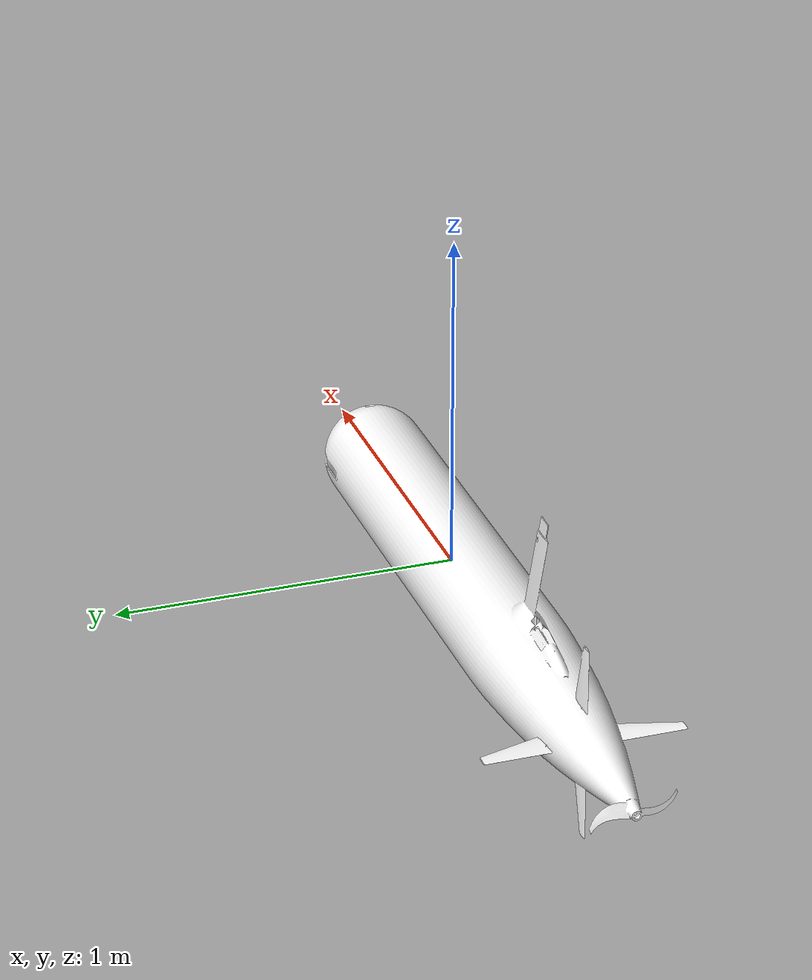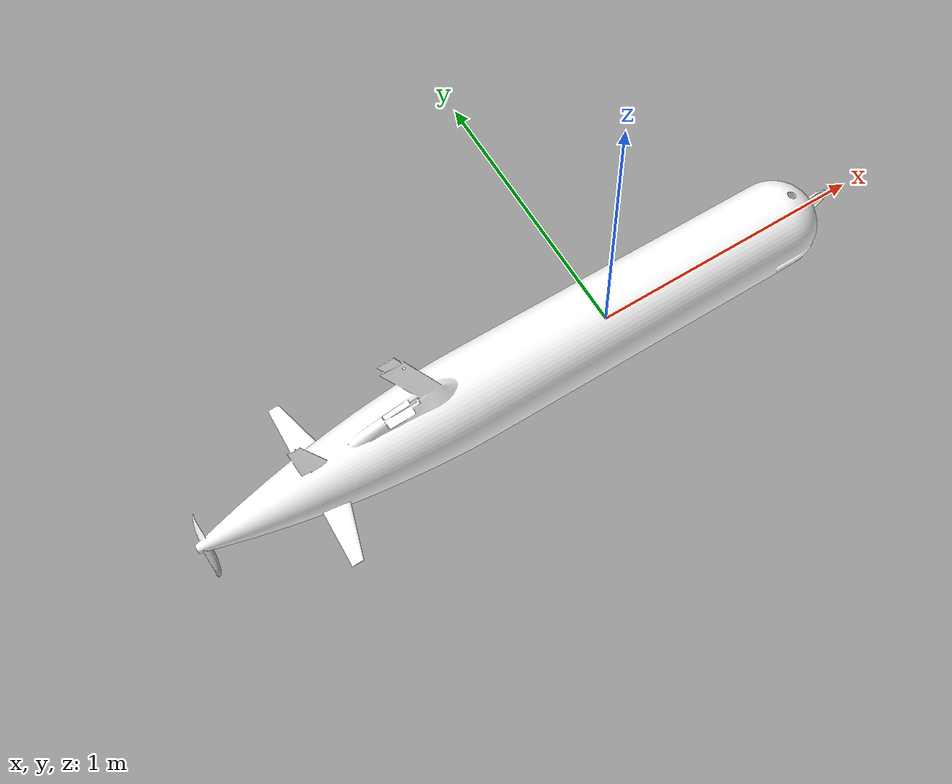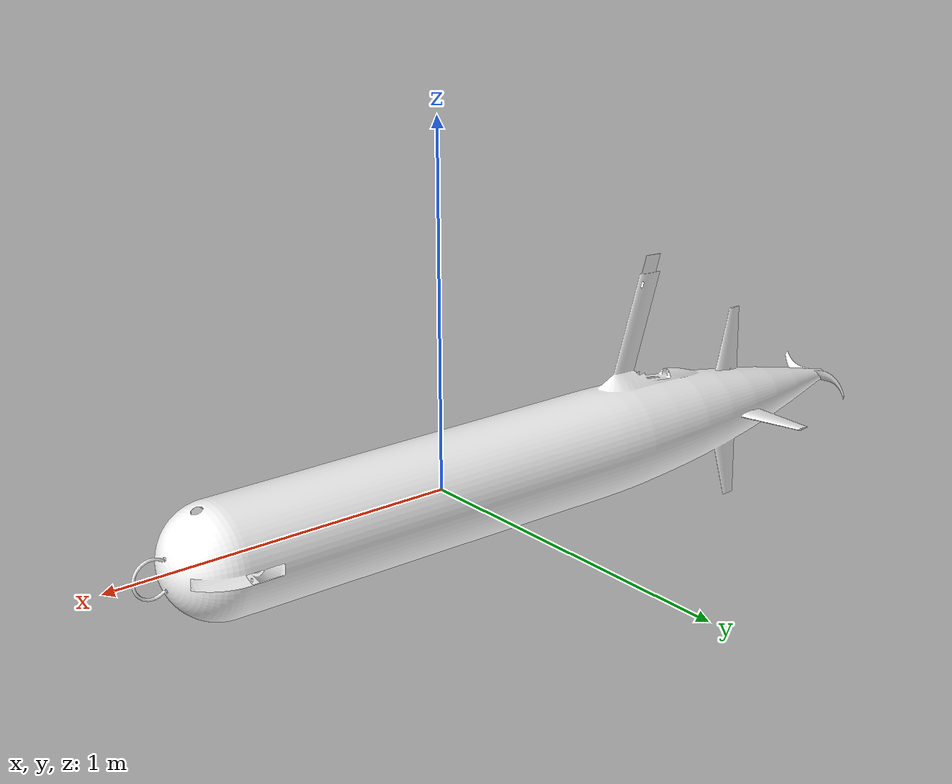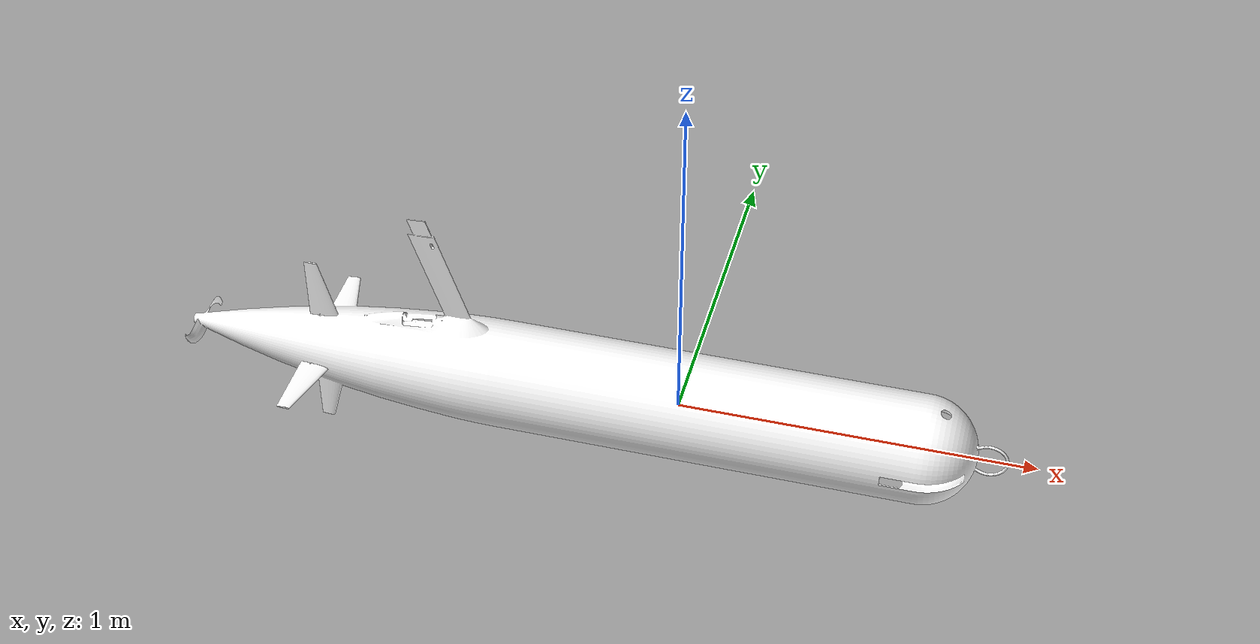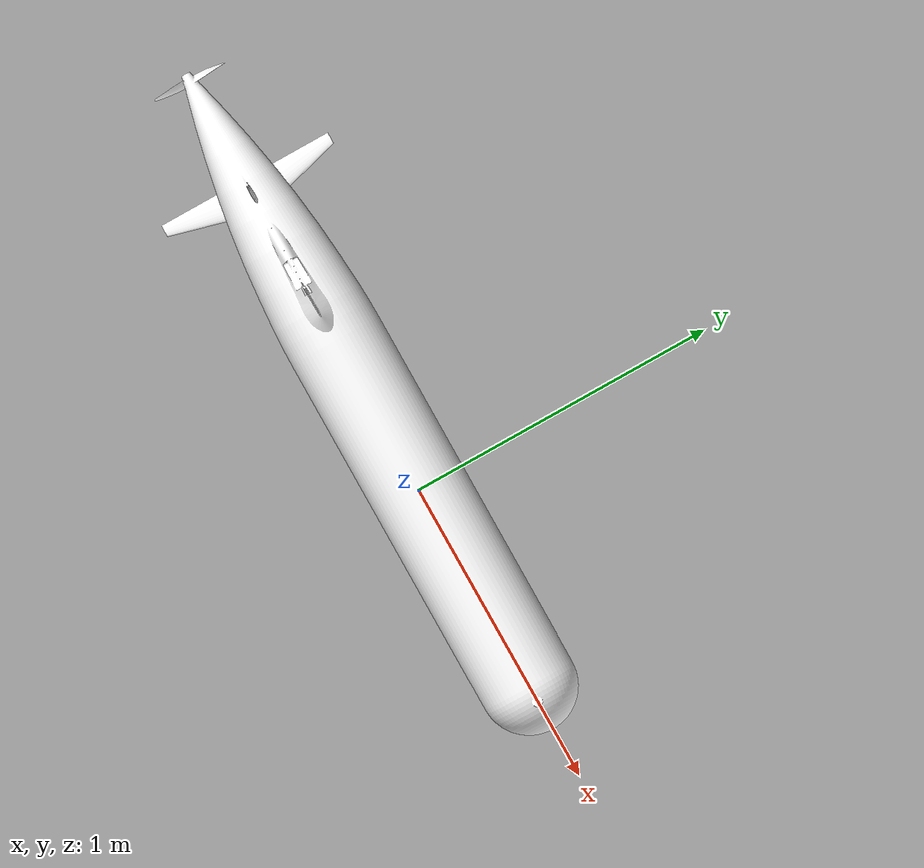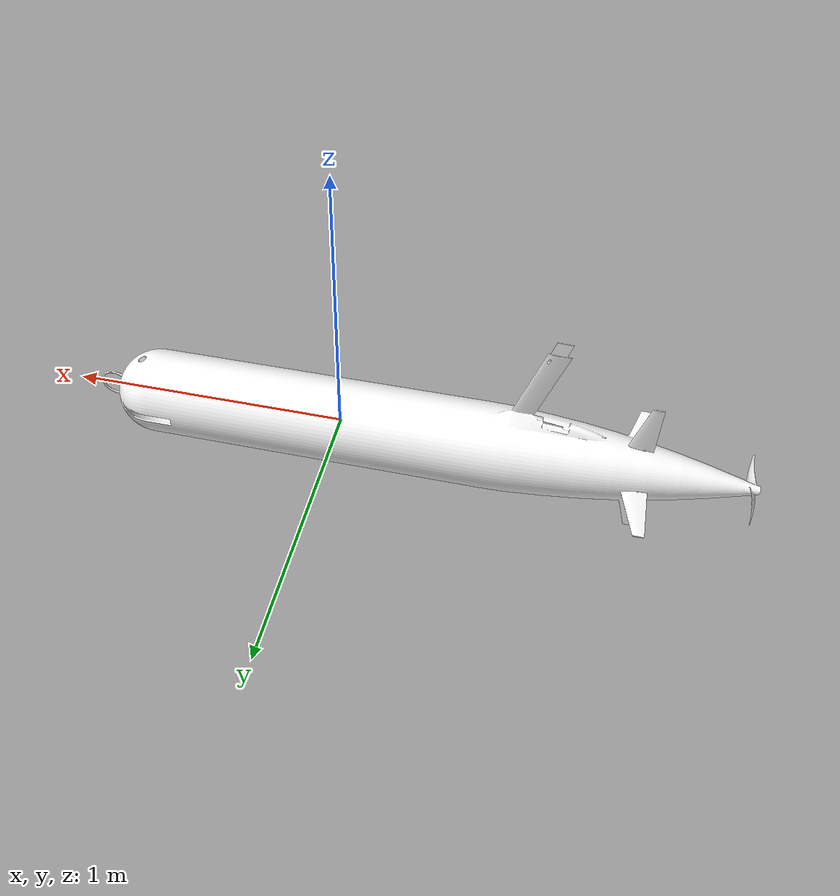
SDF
<?xml version="1.0" ?>

<sdf version="1.9">
  <world name="buoyant_lrauv">
    <scene>
      <ambient>0.0 1.0 1.0</ambient>
      <background>0.0 0.7 0.8</background>
    </scene>

    <physics name="1ms" type="ode">
      <max_step_size>0.001</max_step_size>
      <real_time_factor>1.0</real_time_factor>
    </physics>
    <plugin
      filename="gz-sim-physics-system"
      name="gz::sim::systems::Physics">
    </plugin>
    <plugin
      filename="gz-sim-user-commands-system"
      name="gz::sim::systems::UserCommands">
    </plugin>
    <plugin
      filename="gz-sim-scene-broadcaster-system"
      name="gz::sim::systems::SceneBroadcaster">
    </plugin>
    <plugin
      filename="gz-sim-contact-system"
      name="gz::sim::systems::Contact">
    </plugin>

    <plugin
      filename="gz-sim-buoyancy-system"
      name="gz::sim::systems::Buoyancy">
      <uniform_fluid_density>1000</uniform_fluid_density>
    </plugin>

    <plugin
      filename="gz-sim-particle-emitter-system"
      name="gz::sim::systems::ParticleEmitter">
    </plugin>

    <light type="directional" name="sun">
      <cast_shadows>true</cast_shadows>
      <pose>0 0 10 0 0 0</pose>
      <diffuse>1 1 1 1</diffuse>
      <specular>0.5 0.5 0.5 1</specular>
      <attenuation>
        <range>1000</range>
        <constant>0.9</constant>
        <linear>0.01</linear>
        <quadratic>0.001</quadratic>
      </attenuation>
      <direction>-0.5 0.1 -0.9</direction>
    </light>

    <gui>
      <plugin filename="MinimalScene" name="3D View">
        <gz-gui>
          <title>3D View</title>
          <property type="bool" key="showTitleBar">false</property>
          <property type="string" key="state">docked</property>
        </gz-gui>

        <engine>ogre2</engine>
        <scene>scene</scene>
        <ambient_light>0.4 0.4 0.4</ambient_light>
        <background_color>0.8 0.8 0.8</background_color>
        <camera_pose>5 -1.5 3 0 0.37 2.8</camera_pose>
      </plugin>

      <!-- Plugins that add functionality to the scene -->
      <plugin filename="EntityContextMenuPlugin" name="Entity context menu">
        <gz-gui>
          <property key="state" type="string">floating</property>
          <property key="width" type="double">5</property>
          <property key="height" type="double">5</property>
          <property key="showTitleBar" type="bool">false</property>
        </gz-gui>
      </plugin>
      <plugin filename="GzSceneManager" name="Scene Manager">
        <gz-gui>
          <property key="resizable" type="bool">false</property>
          <property key="width" type="double">5</property>
          <property key="height" type="double">5</property>
          <property key="state" type="string">floating</property>
          <property key="showTitleBar" type="bool">false</property>
        </gz-gui>
      </plugin>
      <plugin filename="InteractiveViewControl" name="Interactive view control">
        <gz-gui>
          <property key="resizable" type="bool">false</property>
          <property key="width" type="double">5</property>
          <property key="height" type="double">5</property>
          <property key="state" type="string">floating</property>
          <property key="showTitleBar" type="bool">false</property>
        </gz-gui>
      </plugin>
      <plugin filename="CameraTracking" name="Camera Tracking">
        <gz-gui>
          <property key="resizable" type="bool">false</property>
          <property key="width" type="double">5</property>
          <property key="height" type="double">5</property>
          <property key="state" type="string">floating</property>
          <property key="showTitleBar" type="bool">false</property>
        </gz-gui>
      </plugin>
      <!-- World control -->
      <plugin filename="WorldControl" name="World control">
        <gz-gui>
          <title>World control</title>
          <property type="bool" key="showTitleBar">false</property>
          <property type="bool" key="resizable">false</property>
          <property type="double" key="height">72</property>
          <property type="double" key="z">1</property>

          <property type="string" key="state">floating</property>
          <anchors target="3D View">
            <line own="left" target="left"/>
            <line own="bottom" target="bottom"/>
          </anchors>
        </gz-gui>

        <play_pause>true</play_pause>
        <step>true</step>
        <start_paused>true</start_paused>
        <use_event>true</use_event>

      </plugin>

      <!-- World statistics -->
      <plugin filename="WorldStats" name="World stats">
        <gz-gui>
          <title>World stats</title>
          <property type="bool" key="showTitleBar">false</property>
          <property type="bool" key="resizable">false</property>
          <property type="double" key="height">110</property>
          <property type="double" key="width">290</property>
          <property type="double" key="z">1</property>

          <property type="string" key="state">floating</property>
          <anchors target="3D View">
            <line own="right" target="right"/>
            <line own="bottom" target="bottom"/>
          </anchors>
        </gz-gui>

        <sim_time>true</sim_time>
        <real_time>true</real_time>
        <real_time_factor>true</real_time_factor>
        <iterations>true</iterations>
      </plugin>

      <plugin filename="MarkerManager" name="Marker manager">
        <gz-gui>
          <property key="resizable" type="bool">false</property>
          <property key="width" type="double">5</property>
          <property key="height" type="double">5</property>
          <property key="state" type="string">floating</property>
          <property key="showTitleBar" type="bool">false</property>
        </gz-gui>
      </plugin>

      <plugin filename="SelectEntities" name="Select Entities">
        <gz-gui>
          <anchors target="Select entities">
            <line own="right" target="right"/>
            <line own="top" target="top"/>
          </anchors>
          <property key="resizable" type="bool">false</property>
          <property key="width" type="double">5</property>
          <property key="height" type="double">5</property>
          <property key="state" type="string">floating</property>
          <property key="showTitleBar" type="bool">false</property>
        </gz-gui>
      </plugin>

      <plugin filename="VisualizationCapabilities" name="Visualization Capabilities">
        <gz-gui>
          <anchors target="Select entities">
            <line own="right" target="right"/>
            <line own="top" target="top"/>
          </anchors>
          <property key="resizable" type="bool">false</property>
          <property key="width" type="double">5</property>
          <property key="height" type="double">5</property>
          <property key="state" type="string">floating</property>
          <property key="showTitleBar" type="bool">false</property>
        </gz-gui>
      </plugin>

      <!-- Entity tree -->
      <plugin filename="EntityTree" name="Entity tree">
      </plugin>

    </gui>

    <model name="my_lrauv">
      <include merge="true" >
        <!-- align with NED (face North) -->
        <pose degrees="true">0 0 0 0 0 -180</pose>
        <uri>my_lrauv</uri>

        <plugin
          filename="gz-sim-odometry-publisher-system"
          name="gz::sim::systems::OdometryPublisher">
        </plugin>

        <!-- Joint controllers -->
        <plugin
          filename="gz-sim-joint-position-controller-system"
          name="gz::sim::systems::JointPositionController">
          <joint_name>horizontal_fins_joint</joint_name>
          <p_gain>0.1</p_gain>
        </plugin>

        <plugin
          filename="gz-sim-joint-position-controller-system"
          name="gz::sim::systems::JointPositionController">
          <joint_name>vertical_fins_joint</joint_name>
          <p_gain>0.1</p_gain>
        </plugin>

        <!-- Uncomment to add a thruster -->

        <!-- Lift and drag -->

        <!-- Vertical fin -->
        <plugin
          filename="gz-sim-lift-drag-system"
          name="gz::sim::systems::LiftDrag">
          <air_density>1000</air_density>
          <cla>4.13</cla>
          <cla_stall>-1.1</cla_stall>
          <cda>0.2</cda>
          <cda_stall>0.03</cda_stall>
          <alpha_stall>0.17</alpha_stall>
          <a0>0</a0>
          <area>0.0244</area>
          <upward>0 1 0</upward>
          <forward>-1 0 0</forward>
          <link_name>vertical_fins</link_name>
          <cp>0 0 0</cp>
        </plugin>

        <!-- Horizontal fin -->
        <plugin
          filename="gz-sim-lift-drag-system"
          name="gz::sim::systems::LiftDrag">
          <air_density>1000</air_density>
          <cla>4.13</cla>
          <cla_stall>-1.1</cla_stall>
          <cda>0.2</cda>
          <cda_stall>0.03</cda_stall>
          <alpha_stall>0.17</alpha_stall>
          <a0>0</a0>
          <area>0.0244</area>
          <upward>0 0 1</upward>
          <forward>1 0 0</forward>
          <link_name>horizontal_fins</link_name>
          <cp>0 0 0</cp>
        </plugin>

        <!-- Uncomment to add hydrodynamics -->
      </include>
    </model>

  </world>
</sdf>

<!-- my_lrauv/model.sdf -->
<sdf version="1.6">
  <model name="my_lrauv">
    <!-- Body -->
    <link name="base_link">
      <inertial>
        <mass>147.8671</mass>
        <inertia>
          <ixx>3.000000</ixx>
          <ixy>0</ixy>
          <ixz>0</ixz>
          <iyy>41.980233</iyy>
          <iyz>0</iyz>
          <izz>41.980233</izz>
        </inertia>
      </inertial>
      <!-- Uncomment this block to enable neutral buoyancy. -->
      <collision name="main_body_buoyancy">
        <geometry>
          <box>
            <size>2 0.3 0.2464451666666667</size>
          </box>
        </geometry>
      </collision>
      <visual name="visual">
        <geometry>
          <mesh>
            <uri>meshes/tethys.dae</uri>
            <submesh>
              <name>Body</name>
                <center>false</center>
            </submesh>
          </mesh>
        </geometry>
        <material>
          <diffuse>1.0 1.0 1.0</diffuse>
          <specular>1.0 1.0 1.0</specular>
          <pbr>
            <metal>
              <albedo_map>materials/textures/Tethys_Albedo.png</albedo_map>
              <normal_map>materials/textures/Tethys_Normal.png</normal_map>
              <metalness_map>materials/textures/Tethys_Metalness.png</metalness_map>
              <roughness_map>materials/textures/Tethys_Roughness.png</roughness_map>
            </metal>
          </pbr>
        </material>
      </visual>
    </link>
    <!-- Horizontal fins -->
    <link name="horizontal_fins">
      <pose>1.05 0 0 0 0 0</pose>
      <inertial>
        <pose>0 0 0 1.57 0 0.5</pose>
        <mass>0.2</mass>
        <inertia>
          <ixx>0.0007924568755</ixx>
          <ixy>-0.0000000002674</ixy>
          <ixz>0.0003978158176</ixz>
          <iyy>0.0010546736475</iyy>
          <iyz>-0.0000000006729</iyz>
          <izz>0.0002633558262</izz>
         </inertia>
        <fluid_added_mass>
          <xx>4.876161</xx>
          <xy>0.0</xy>
          <xz>0.0</xz>
          <xp>0.0</xp>
          <xq>0.0</xq>
          <xr>0.0</xr>
          <yy>126.324739</yy>
          <yz>0.0</yz>
          <yp>0.0</yp>
          <yq>0.0</yq>
          <yr>0.0</yr>
          <zz>126.324739</zz>
          <zp>0.0</zp>
          <zq>0.0</zq>
          <zr>0.0</zr>
          <pp>0.1916</pp>
          <pq>33.46</pq>
          <pr>0.0</pr>
          <qq>0.0</qq>
          <qr>33.46</qr>
          <rr>0.0</rr>
        </fluid_added_mass>

      </inertial>

      <collision name="collision">
        <geometry>
          <box>
            <size>0.1 0.1 0.02</size>
          </box>
        </geometry>
      </collision>
      <visual name="visual">
        <pose>-1.05 0 0 0 0 0</pose>
        <geometry>
          <mesh>
            <uri>meshes/tethys.dae</uri>
            <submesh>
              <name>Fins_Horizontal</name>
              <center>false</center>
            </submesh>
          </mesh>
        </geometry>
        <material>
          <diffuse>1.0 1.0 1.0</diffuse>
          <specular>1.0 1.0 1.0</specular>
          <pbr>
            <metal>
              <albedo_map>materials/textures/Tethys_Albedo.png</albedo_map>
              <normal_map>materials/textures/Tethys_Normal.png</normal_map>
              <metalness_map>materials/textures/Tethys_Metalness.png</metalness_map>
              <roughness_map>materials/textures/Tethys_Roughness.png</roughness_map>
            </metal>
          </pbr>
        </material>
        </visual>
    </link>
    <!-- Vertical fins -->
    <link name="vertical_fins">
      <pose>1.05 0 0 0 0 0</pose>
      <inertial>
        <mass>0.2</mass>
        <inertia>
          <ixx>0.0007924568755</ixx>
          <ixy>-0.0000000002674</ixy>
          <ixz>0.0003978158176</ixz>
          <iyy>0.0010546736475</iyy>
          <iyz>-0.0000000006729</iyz>
          <izz>0.0002633558262</izz>
        </inertia>
      </inertial>
      <collision name="collision">
        <geometry>
          <box>
            <size>0.1 0.1 0.02</size>
          </box>
        </geometry>
      </collision>
      <visual name="visual">
        <pose>-1.05 0 0 0 0 0</pose>
        <geometry>
          <mesh>
            <uri>meshes/tethys.dae</uri>
            <submesh>
              <name>Fins_vertical</name>
              <center>false</center>
            </submesh>
          </mesh>
        </geometry>
        <material>
          <diffuse>1.0 1.0 1.0</diffuse>
          <specular>1.0 1.0 1.0</specular>
          <pbr>
            <metal>
              <albedo_map>materials/textures/Tethys_Albedo.png</albedo_map>
              <normal_map>materials/textures/Tethys_Normal.png</normal_map>
              <metalness_map>materials/textures/Tethys_Metalness.png</metalness_map>
              <roughness_map>materials/textures/Tethys_Roughness.png</roughness_map>
            </metal>
          </pbr>
        </material>
      </visual>
    </link>
    <!-- Propeller -->
    <link name="propeller">
      <pose>1.43162 0 0 0 0 0</pose>
      <inertial>
        <pose>0 0 0 0 0 0</pose>
        <mass>0.09</mass>
        <inertia>
          <ixx>0.000143971303</ixx>
          <ixy>0.000000000008</ixy>
          <ixz>-0.000000000224</ixz>
          <iyy>0.000140915448</iyy>
          <iyz>-0.000025236433</iyz>
          <izz>0.000033571862</izz>
        </inertia>
      </inertial>
      <collision name="collision">
        <geometry>
          <box>
            <size>0.03 0.1 0.03</size>
          </box>
        </geometry>
      </collision>
      <visual name="visual">
        <pose>-1.43162 0 0 0 0 0</pose>
        <geometry>
          <mesh>
            <uri>meshes/tethys.dae</uri>
            <submesh>
              <name>Prop</name>
              <center>false</center>
            </submesh>
          </mesh>
        </geometry>
        <material>
          <diffuse>1.0 1.0 1.0</diffuse>
          <specular>1.0 1.0 1.0</specular>
          <pbr>
            <metal>
              <albedo_map>materials/textures/Tethys_Albedo.png</albedo_map>
              <normal_map>materials/textures/Tethys_Normal.png</normal_map>
              <metalness_map>materials/textures/Tethys_Metalness.png</metalness_map>
              <roughness_map>materials/textures/Tethys_Roughness.png</roughness_map>
            </metal>
          </pbr>
        </material>
      </visual>
    </link>
    <!-- Joints -->
    <joint name="horizontal_fins_joint" type="revolute">
      <pose>0 0 0 0 0 0</pose>
      <parent>base_link</parent>
      <child>horizontal_fins</child>
      <axis>
        <xyz>0 1 0</xyz>
        <limit>
          <lower>-0.261799</lower>
          <upper>0.261799</upper>
          <effort>-1</effort>
          <velocity>-1</velocity>
        </limit>
      </axis>
    </joint>
    <joint name="vertical_fins_joint" type="revolute">
      <pose>0 0 0 0 0 0</pose>
      <parent>base_link</parent>
      <child>vertical_fins</child>
      <axis>
        <xyz>0 0 1</xyz>
        <limit>
          <lower>-0.261799</lower>
          <upper>0.261799</upper>
          <effort>-1</effort>
          <velocity>-1</velocity>
        </limit>
      </axis>
    </joint>
    <joint name="propeller_joint" type="revolute">
      <pose>0 0 0 0 0 0</pose>
      <parent>base_link</parent>
      <child>propeller</child>
      <axis>
        <xyz>1 0 0</xyz>
        <limit>
          <lower>-1e+12</lower>
          <upper>1e+12</upper>
          <effort>-1</effort>
          <velocity>-1</velocity>
        </limit>
      </axis>
    </joint>

  </model>
</sdf>
